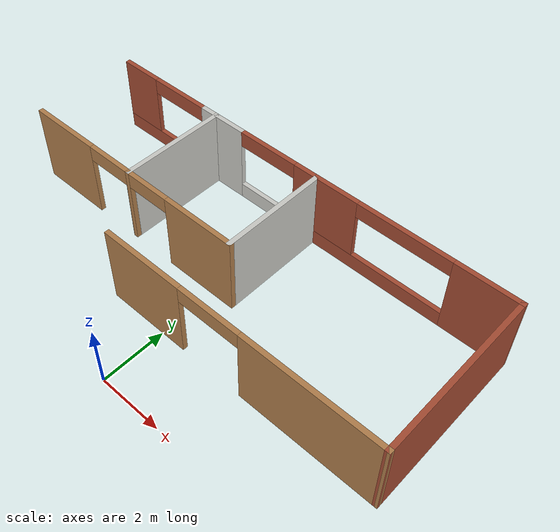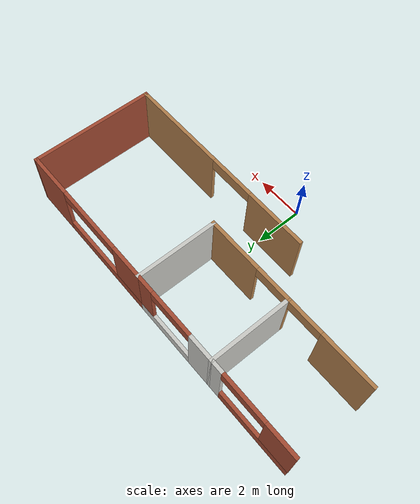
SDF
<sdf version="1.6">
 <model name="mybuilding_0">
  <link name="Wall_112">
   <pose>2.60469 2.0956 0 0 -0 3.14159</pose>
   <visual name="Wall_112_Visual_0">
    <pose>-2.34058 0 1.25 0 -0 0</pose>
    <geometry><box><size>4.31883 0.15 2.5</size></box></geometry>
    <material>
     <script><uri>file://media/materials/scripts/gazebo.material</uri><name>Gazebo/Wood</name></script>
     <ambient>1 1 0.498039 1</ambient>
     <diffuse>1 1 1 1</diffuse>
     <specular>0.2 0.2 0.2 1</specular>
     <emissive>0 0 0 1</emissive>
    </material>
   </visual>
   <visual name="Wall_112_Visual_1">
    <pose>3.15942 0 1.25 0 -0 0</pose>
    <geometry><box><size>2.68117 0.15 2.5</size></box></geometry>
    <material>
     <script><uri>file://media/materials/scripts/gazebo.material</uri><name>Gazebo/Wood</name></script>
     <ambient>1 1 0.498039 1</ambient>
     <diffuse>1 1 1 1</diffuse>
     <specular>0.2 0.2 0.2 1</specular>
     <emissive>0 0 0 1</emissive>
    </material>
   </visual>
   <visual name="Wall_112_Visual_2">
    <pose>0.81883 0 2.25 0 -0 0</pose>
    <geometry><box><size>2 0.15 0.5</size></box></geometry>
    <material>
     <script><uri>file://media/materials/scripts/gazebo.material</uri><name>Gazebo/Wood</name></script>
     <ambient>1 1 0.498039 1</ambient>
     <diffuse>1 1 1 1</diffuse>
     <specular>0.2 0.2 0.2 1</specular>
     <emissive>0 0 0 1</emissive>
    </material>
   </visual>
   <collision name="Wall_112_Collision_0">
    <pose>-2.34058 0 1.25 0 -0 0</pose>
    <geometry><box><size>4.31883 0.15 2.5</size></box></geometry>
    <surface>
     <friction>
      <ode><mu>1</mu><mu2>1</mu2><fdir1>0 0 0</fdir1><slip1>0</slip1><slip2>0</slip2></ode>
      <torsional>
       <coefficient>1</coefficient>
       <patch_radius>0</patch_radius>
       <surface_radius>0</surface_radius>
       <use_patch_radius>1</use_patch_radius>
       <ode><slip>0</slip></ode>
      </torsional>
     </friction>
     <bounce><restitution_coefficient>0</restitution_coefficient><threshold>1e+06</threshold></bounce>
     <contact>
      <collide_without_contact>0</collide_without_contact>
      <collide_without_contact_bitmask>1</collide_without_contact_bitmask>
      <collide_bitmask>1</collide_bitmask>
      <ode>
       <soft_cfm>0</soft_cfm>
       <soft_erp>0.2</soft_erp>
       <kp>1e+13</kp>
       <kd>1</kd>
       <max_vel>0.01</max_vel>
       <min_depth>0</min_depth>
      </ode>
      <bullet>
       <split_impulse>1</split_impulse>
       <split_impulse_penetration_threshold>-0.01</split_impulse_penetration_threshold>
       <soft_cfm>0</soft_cfm>
       <soft_erp>0.2</soft_erp>
       <kp>1e+13</kp>
       <kd>1</kd>
      </bullet>
     </contact>
    </surface>
   </collision>
   <collision name="Wall_112_Collision_1">
    <pose>3.15942 0 1.25 0 -0 0</pose>
    <geometry><box><size>2.68117 0.15 2.5</size></box></geometry>
    <surface>
     <friction>
      <ode><mu>1</mu><mu2>1</mu2><fdir1>0 0 0</fdir1><slip1>0</slip1><slip2>0</slip2></ode>
      <torsional>
       <coefficient>1</coefficient>
       <patch_radius>0</patch_radius>
       <surface_radius>0</surface_radius>
       <use_patch_radius>1</use_patch_radius>
       <ode><slip>0</slip></ode>
      </torsional>
     </friction>
     <bounce><restitution_coefficient>0</restitution_coefficient><threshold>1e+06</threshold></bounce>
     <contact>
      <collide_without_contact>0</collide_without_contact>
      <collide_without_contact_bitmask>1</collide_without_contact_bitmask>
      <collide_bitmask>1</collide_bitmask>
      <ode>
       <soft_cfm>0</soft_cfm>
       <soft_erp>0.2</soft_erp>
       <kp>1e+13</kp>
       <kd>1</kd>
       <max_vel>0.01</max_vel>
       <min_depth>0</min_depth>
      </ode>
      <bullet>
       <split_impulse>1</split_impulse>
       <split_impulse_penetration_threshold>-0.01</split_impulse_penetration_threshold>
       <soft_cfm>0</soft_cfm>
       <soft_erp>0.2</soft_erp>
       <kp>1e+13</kp>
       <kd>1</kd>
      </bullet>
     </contact>
    </surface>
   </collision>
   <collision name="Wall_112_Collision_2">
    <pose>0.81883 0 2.25 0 -0 0</pose>
    <geometry><box><size>2 0.15 0.5</size></box></geometry>
    <surface>
     <friction>
      <ode><mu>1</mu><mu2>1</mu2><fdir1>0 0 0</fdir1><slip1>0</slip1><slip2>0</slip2></ode>
      <torsional>
       <coefficient>1</coefficient>
       <patch_radius>0</patch_radius>
       <surface_radius>0</surface_radius>
       <use_patch_radius>1</use_patch_radius>
       <ode><slip>0</slip></ode>
      </torsional>
     </friction>
     <bounce><restitution_coefficient>0</restitution_coefficient><threshold>1e+06</threshold></bounce>
     <contact>
      <collide_without_contact>0</collide_without_contact>
      <collide_without_contact_bitmask>1</collide_without_contact_bitmask>
      <collide_bitmask>1</collide_bitmask>
      <ode>
       <soft_cfm>0</soft_cfm>
       <soft_erp>0.2</soft_erp>
       <kp>1e+13</kp>
       <kd>1</kd>
       <max_vel>0.01</max_vel>
       <min_depth>0</min_depth>
      </ode>
      <bullet>
       <split_impulse>1</split_impulse>
       <split_impulse_penetration_threshold>-0.01</split_impulse_penetration_threshold>
       <soft_cfm>0</soft_cfm>
       <soft_erp>0.2</soft_erp>
       <kp>1e+13</kp>
       <kd>1</kd>
      </bullet>
     </contact>
    </surface>
   </collision>
  </link>
  <link name="Wall_114">
   <pose>7.02493 4.68743 0 0 -0 1.57263</pose>
   <visual name="Wall_114_Visual">
    <pose>0 0 1.25 0 -0 0</pose>
    <geometry><box><size>5.33367 0.15 2.5</size></box></geometry>
    <material>
     <script><uri>file://media/materials/scripts/gazebo.material</uri><name>Gazebo/Bricks</name></script>
     <ambient>1 1 1 1</ambient>
     <diffuse>1 1 1 1</diffuse>
     <specular>0.2 0.2 0.2 1</specular>
     <emissive>0 0 0 1</emissive>
    </material>
   </visual>
   <collision name="Wall_114_Collision">
    <pose>0 0 1.25 0 -0 0</pose>
    <geometry><box><size>5.33367 0.15 2.5</size></box></geometry>
    <surface>
     <friction>
      <ode><mu>1</mu><mu2>1</mu2><fdir1>0 0 0</fdir1><slip1>0</slip1><slip2>0</slip2></ode>
      <torsional>
       <coefficient>1</coefficient>
       <patch_radius>0</patch_radius>
       <surface_radius>0</surface_radius>
       <use_patch_radius>1</use_patch_radius>
       <ode><slip>0</slip></ode>
      </torsional>
     </friction>
     <bounce><restitution_coefficient>0</restitution_coefficient><threshold>1e+06</threshold></bounce>
     <contact>
      <collide_without_contact>0</collide_without_contact>
      <collide_without_contact_bitmask>1</collide_without_contact_bitmask>
      <collide_bitmask>1</collide_bitmask>
      <ode>
       <soft_cfm>0</soft_cfm>
       <soft_erp>0.2</soft_erp>
       <kp>1e+13</kp>
       <kd>1</kd>
       <max_vel>0.01</max_vel>
       <min_depth>0</min_depth>
      </ode>
      <bullet>
       <split_impulse>1</split_impulse>
       <split_impulse_penetration_threshold>-0.01</split_impulse_penetration_threshold>
       <soft_cfm>0</soft_cfm>
       <soft_erp>0.2</soft_erp>
       <kp>1e+13</kp>
       <kd>1</kd>
      </bullet>
     </contact>
    </surface>
   </collision>
  </link>
  <link name="Wall_119">
   <pose>3.84517 7.27926 0 0 -0 3.14159</pose>
   <visual name="Wall_119_Visual_0">
    <pose>-2.25429 0 1.25 0 -0 0</pose>
    <geometry><box><size>1.99143 0.15 2.5</size></box></geometry>
    <material>
     <script><uri>file://media/materials/scripts/gazebo.material</uri><name>Gazebo/Bricks</name></script>
     <ambient>1 1 1 1</ambient>
     <diffuse>1 1 1 1</diffuse>
     <specular>0.2 0.2 0.2 1</specular>
     <emissive>0 0 0 1</emissive>
    </material>
   </visual>
   <visual name="Wall_119_Visual_1">
    <pose>0.995713 0 0.25 0 -0 0</pose>
    <geometry><box><size>4.50857 0.15 0.5</size></box></geometry>
    <material>
     <script><uri>file://media/materials/scripts/gazebo.material</uri><name>Gazebo/Bricks</name></script>
     <ambient>1 1 1 1</ambient>
     <diffuse>1 1 1 1</diffuse>
     <specular>0.2 0.2 0.2 1</specular>
     <emissive>0 0 0 1</emissive>
    </material>
   </visual>
   <visual name="Wall_119_Visual_2">
    <pose>2.49571 0 1.5 0 -0 0</pose>
    <geometry><box><size>1.50857 0.15 2</size></box></geometry>
    <material>
     <script><uri>file://media/materials/scripts/gazebo.material</uri><name>Gazebo/Bricks</name></script>
     <ambient>1 1 1 1</ambient>
     <diffuse>1 1 1 1</diffuse>
     <specular>0.2 0.2 0.2 1</specular>
     <emissive>0 0 0 1</emissive>
    </material>
   </visual>
   <visual name="Wall_119_Visual_3">
    <pose>0.241426 0 2.25 0 -0 0</pose>
    <geometry><box><size>3 0.15 0.5</size></box></geometry>
    <material>
     <script><uri>file://media/materials/scripts/gazebo.material</uri><name>Gazebo/Bricks</name></script>
     <ambient>1 1 1 1</ambient>
     <diffuse>1 1 1 1</diffuse>
     <specular>0.2 0.2 0.2 1</specular>
     <emissive>0 0 0 1</emissive>
    </material>
   </visual>
   <collision name="Wall_119_Collision_0">
    <pose>-2.25429 0 1.25 0 -0 0</pose>
    <geometry><box><size>1.99143 0.15 2.5</size></box></geometry>
    <surface>
     <friction>
      <ode><mu>1</mu><mu2>1</mu2><fdir1>0 0 0</fdir1><slip1>0</slip1><slip2>0</slip2></ode>
      <torsional>
       <coefficient>1</coefficient>
       <patch_radius>0</patch_radius>
       <surface_radius>0</surface_radius>
       <use_patch_radius>1</use_patch_radius>
       <ode><slip>0</slip></ode>
      </torsional>
     </friction>
     <bounce><restitution_coefficient>0</restitution_coefficient><threshold>1e+06</threshold></bounce>
     <contact>
      <collide_without_contact>0</collide_without_contact>
      <collide_without_contact_bitmask>1</collide_without_contact_bitmask>
      <collide_bitmask>1</collide_bitmask>
      <ode>
       <soft_cfm>0</soft_cfm>
       <soft_erp>0.2</soft_erp>
       <kp>1e+13</kp>
       <kd>1</kd>
       <max_vel>0.01</max_vel>
       <min_depth>0</min_depth>
      </ode>
      <bullet>
       <split_impulse>1</split_impulse>
       <split_impulse_penetration_threshold>-0.01</split_impulse_penetration_threshold>
       <soft_cfm>0</soft_cfm>
       <soft_erp>0.2</soft_erp>
       <kp>1e+13</kp>
       <kd>1</kd>
      </bullet>
     </contact>
    </surface>
   </collision>
   <collision name="Wall_119_Collision_1">
    <pose>0.995713 0 0.25 0 -0 0</pose>
    <geometry><box><size>4.50857 0.15 0.5</size></box></geometry>
    <surface>
     <friction>
      <ode><mu>1</mu><mu2>1</mu2><fdir1>0 0 0</fdir1><slip1>0</slip1><slip2>0</slip2></ode>
      <torsional>
       <coefficient>1</coefficient>
       <patch_radius>0</patch_radius>
       <surface_radius>0</surface_radius>
       <use_patch_radius>1</use_patch_radius>
       <ode><slip>0</slip></ode>
      </torsional>
     </friction>
     <bounce><restitution_coefficient>0</restitution_coefficient><threshold>1e+06</threshold></bounce>
     <contact>
      <collide_without_contact>0</collide_without_contact>
      <collide_without_contact_bitmask>1</collide_without_contact_bitmask>
      <collide_bitmask>1</collide_bitmask>
      <ode>
       <soft_cfm>0</soft_cfm>
       <soft_erp>0.2</soft_erp>
       <kp>1e+13</kp>
       <kd>1</kd>
       <max_vel>0.01</max_vel>
       <min_depth>0</min_depth>
      </ode>
      <bullet>
       <split_impulse>1</split_impulse>
       <split_impulse_penetration_threshold>-0.01</split_impulse_penetration_threshold>
       <soft_cfm>0</soft_cfm>
       <soft_erp>0.2</soft_erp>
       <kp>1e+13</kp>
       <kd>1</kd>
      </bullet>
     </contact>
    </surface>
   </collision>
   <collision name="Wall_119_Collision_2">
    <pose>2.49571 0 1.5 0 -0 0</pose>
    <geometry><box><size>1.50857 0.15 2</size></box></geometry>
    <surface>
     <friction>
      <ode><mu>1</mu><mu2>1</mu2><fdir1>0 0 0</fdir1><slip1>0</slip1><slip2>0</slip2></ode>
      <torsional>
       <coefficient>1</coefficient>
       <patch_radius>0</patch_radius>
       <surface_radius>0</surface_radius>
       <use_patch_radius>1</use_patch_radius>
       <ode><slip>0</slip></ode>
      </torsional>
     </friction>
     <bounce><restitution_coefficient>0</restitution_coefficient><threshold>1e+06</threshold></bounce>
     <contact>
      <collide_without_contact>0</collide_without_contact>
      <collide_without_contact_bitmask>1</collide_without_contact_bitmask>
      <collide_bitmask>1</collide_bitmask>
      <ode>
       <soft_cfm>0</soft_cfm>
       <soft_erp>0.2</soft_erp>
       <kp>1e+13</kp>
       <kd>1</kd>
       <max_vel>0.01</max_vel>
       <min_depth>0</min_depth>
      </ode>
      <bullet>
       <split_impulse>1</split_impulse>
       <split_impulse_penetration_threshold>-0.01</split_impulse_penetration_threshold>
       <soft_cfm>0</soft_cfm>
       <soft_erp>0.2</soft_erp>
       <kp>1e+13</kp>
       <kd>1</kd>
      </bullet>
     </contact>
    </surface>
   </collision>
   <collision name="Wall_119_Collision_3">
    <pose>0.241426 0 2.25 0 -0 0</pose>
    <geometry><box><size>3 0.15 0.5</size></box></geometry>
    <surface>
     <friction>
      <ode><mu>1</mu><mu2>1</mu2><fdir1>0 0 0</fdir1><slip1>0</slip1><slip2>0</slip2></ode>
      <torsional>
       <coefficient>1</coefficient>
       <patch_radius>0</patch_radius>
       <surface_radius>0</surface_radius>
       <use_patch_radius>1</use_patch_radius>
       <ode><slip>0</slip></ode>
      </torsional>
     </friction>
     <bounce><restitution_coefficient>0</restitution_coefficient><threshold>1e+06</threshold></bounce>
     <contact>
      <collide_without_contact>0</collide_without_contact>
      <collide_without_contact_bitmask>1</collide_without_contact_bitmask>
      <collide_bitmask>1</collide_bitmask>
      <ode>
       <soft_cfm>0</soft_cfm>
       <soft_erp>0.2</soft_erp>
       <kp>1e+13</kp>
       <kd>1</kd>
       <max_vel>0.01</max_vel>
       <min_depth>0</min_depth>
      </ode>
      <bullet>
       <split_impulse>1</split_impulse>
       <split_impulse_penetration_threshold>-0.01</split_impulse_penetration_threshold>
       <soft_cfm>0</soft_cfm>
       <soft_erp>0.2</soft_erp>
       <kp>1e+13</kp>
       <kd>1</kd>
      </bullet>
     </contact>
    </surface>
   </collision>
  </link>
  <link name="Wall_121">
   <pose>0.670175 5.60426 0 0 0 -1.5708</pose>
   <visual name="Wall_121_Visual">
    <pose>0 0 1.25 0 -0 0</pose>
    <geometry><box><size>3.5 0.15 2.5</size></box></geometry>
    <material>
     <script><uri>file://media/materials/scripts/gazebo.material</uri><name>Gazebo/CeilingTiled</name></script>
     <ambient>0.333333 0.333333 0.498039 1</ambient>
     <diffuse>1 1 1 1</diffuse>
     <specular>0 0 0 1</specular>
     <emissive>0 0 0 1</emissive>
    </material>
   </visual>
   <collision name="Wall_121_Collision">
    <pose>0 0 1.25 0 -0 0</pose>
    <geometry><box><size>3.5 0.15 2.5</size></box></geometry>
    <surface>
     <friction>
      <ode><mu>1</mu><mu2>1</mu2><fdir1>0 0 0</fdir1><slip1>0</slip1><slip2>0</slip2></ode>
      <torsional>
       <coefficient>1</coefficient>
       <patch_radius>0</patch_radius>
       <surface_radius>0</surface_radius>
       <use_patch_radius>1</use_patch_radius>
       <ode><slip>0</slip></ode>
      </torsional>
     </friction>
     <bounce><restitution_coefficient>0</restitution_coefficient><threshold>1e+06</threshold></bounce>
     <contact>
      <collide_without_contact>0</collide_without_contact>
      <collide_without_contact_bitmask>1</collide_without_contact_bitmask>
      <collide_bitmask>1</collide_bitmask>
      <ode>
       <soft_cfm>0</soft_cfm>
       <soft_erp>0.2</soft_erp>
       <kp>1e+13</kp>
       <kd>1</kd>
       <max_vel>0.01</max_vel>
       <min_depth>0</min_depth>
      </ode>
      <bullet>
       <split_impulse>1</split_impulse>
       <split_impulse_penetration_threshold>-0.01</split_impulse_penetration_threshold>
       <soft_cfm>0</soft_cfm>
       <soft_erp>0.2</soft_erp>
       <kp>1e+13</kp>
       <kd>1</kd>
      </bullet>
     </contact>
    </surface>
   </collision>
  </link>
  <link name="Wall_123">
   <pose>-1.25483 3.92926 0 0 -0 3.14159</pose>
   <inertial>
    <mass>1</mass>
    <inertia><ixx>1</ixx><ixy>0</ixy><ixz>0</ixz><iyy>1</iyy><iyz>0</iyz><izz>1</izz></inertia>
   </inertial>
   <visual name="Wall_123_Visual_1">
    <pose>1.95688 0 1.25 0 -0 0</pose>
    <geometry><box><size>0.086235 0.15 2.5</size></box></geometry>
    <material>
     <script><uri>file://media/materials/scripts/gazebo.material</uri><name>Gazebo/Wood</name></script>
     <ambient>1 1 1 1</ambient>
     <diffuse>1 1 1 1</diffuse>
     <specular>0.2 0.2 0.2 1</specular>
     <emissive>0 0 0 1</emissive>
     <shader type="vertex"><normal_map>__default__</normal_map></shader>
    </material>
   </visual>
   <visual name="Wall_123_Visual_0">
    <pose>-0.793117 0 1.25 0 -0 0</pose>
    <geometry><box><size>2.41377 0.15 2.5</size></box></geometry>
    <material>
     <script><uri>file://media/materials/scripts/gazebo.material</uri><name>Gazebo/Wood</name></script>
     <ambient>1 1 1 1</ambient>
     <diffuse>1 1 1 1</diffuse>
     <specular>0.2 0.2 0.2 1</specular>
     <emissive>0 0 0 1</emissive>
     <shader type="vertex"><normal_map>__default__</normal_map></shader>
    </material>
   </visual>
   <visual name="Wall_123_Visual_2">
    <pose>1.16376 0 2.25 0 -0 0</pose>
    <geometry><box><size>1.5 0.15 0.5</size></box></geometry>
    <material>
     <script><uri>file://media/materials/scripts/gazebo.material</uri><name>Gazebo/Wood</name></script>
     <ambient>1 1 1 1</ambient>
     <diffuse>1 1 1 1</diffuse>
     <specular>0.2 0.2 0.2 1</specular>
     <emissive>0 0 0 1</emissive>
     <shader type="vertex"><normal_map>__default__</normal_map></shader>
    </material>
   </visual>
   <collision name="Wall_123_Collision_0">
    <pose>-0.793117 0 1.25 0 -0 0</pose>
    <geometry><box><size>2.41377 0.15 2.5</size></box></geometry>
    <surface>
     <friction>
      <ode><mu>1</mu><mu2>1</mu2><fdir1>0 0 0</fdir1><slip1>0</slip1><slip2>0</slip2></ode>
      <torsional>
       <coefficient>1</coefficient>
       <patch_radius>0</patch_radius>
       <surface_radius>0</surface_radius>
       <use_patch_radius>1</use_patch_radius>
       <ode><slip>0</slip></ode>
      </torsional>
     </friction>
     <bounce><restitution_coefficient>0</restitution_coefficient><threshold>1e+06</threshold></bounce>
     <contact>
      <collide_without_contact>0</collide_without_contact>
      <collide_without_contact_bitmask>1</collide_without_contact_bitmask>
      <collide_bitmask>1</collide_bitmask>
      <ode>
       <soft_cfm>0</soft_cfm>
       <soft_erp>0.2</soft_erp>
       <kp>1e+13</kp>
       <kd>1</kd>
       <max_vel>0.01</max_vel>
       <min_depth>0</min_depth>
      </ode>
      <bullet>
       <split_impulse>1</split_impulse>
       <split_impulse_penetration_threshold>-0.01</split_impulse_penetration_threshold>
       <soft_cfm>0</soft_cfm>
       <soft_erp>0.2</soft_erp>
       <kp>1e+13</kp>
       <kd>1</kd>
      </bullet>
     </contact>
    </surface>
   </collision>
   <collision name="Wall_123_Collision_1">
    <pose>1.95688 0 1.25 0 -0 0</pose>
    <geometry><box><size>0.086235 0.15 2.5</size></box></geometry>
    <surface>
     <friction>
      <ode><mu>1</mu><mu2>1</mu2><fdir1>0 0 0</fdir1><slip1>0</slip1><slip2>0</slip2></ode>
      <torsional>
       <coefficient>1</coefficient>
       <patch_radius>0</patch_radius>
       <surface_radius>0</surface_radius>
       <use_patch_radius>1</use_patch_radius>
       <ode><slip>0</slip></ode>
      </torsional>
     </friction>
     <bounce><restitution_coefficient>0</restitution_coefficient><threshold>1e+06</threshold></bounce>
     <contact>
      <collide_without_contact>0</collide_without_contact>
      <collide_without_contact_bitmask>1</collide_without_contact_bitmask>
      <collide_bitmask>1</collide_bitmask>
      <ode>
       <soft_cfm>0</soft_cfm>
       <soft_erp>0.2</soft_erp>
       <kp>1e+13</kp>
       <kd>1</kd>
       <max_vel>0.01</max_vel>
       <min_depth>0</min_depth>
      </ode>
      <bullet>
       <split_impulse>1</split_impulse>
       <split_impulse_penetration_threshold>-0.01</split_impulse_penetration_threshold>
       <soft_cfm>0</soft_cfm>
       <soft_erp>0.2</soft_erp>
       <kp>1e+13</kp>
       <kd>1</kd>
      </bullet>
     </contact>
    </surface>
   </collision>
   <collision name="Wall_123_Collision_2">
    <pose>1.16376 0 2.25 0 -0 0</pose>
    <geometry><box><size>1.5 0.15 0.5</size></box></geometry>
    <surface>
     <friction>
      <ode><mu>1</mu><mu2>1</mu2><fdir1>0 0 0</fdir1><slip1>0</slip1><slip2>0</slip2></ode>
      <torsional>
       <coefficient>1</coefficient>
       <patch_radius>0</patch_radius>
       <surface_radius>0</surface_radius>
       <use_patch_radius>1</use_patch_radius>
       <ode><slip>0</slip></ode>
      </torsional>
     </friction>
     <bounce><restitution_coefficient>0</restitution_coefficient><threshold>1e+06</threshold></bounce>
     <contact>
      <collide_without_contact>0</collide_without_contact>
      <collide_without_contact_bitmask>1</collide_without_contact_bitmask>
      <collide_bitmask>1</collide_bitmask>
      <ode>
       <soft_cfm>0</soft_cfm>
       <soft_erp>0.2</soft_erp>
       <kp>1e+13</kp>
       <kd>1</kd>
       <max_vel>0.01</max_vel>
       <min_depth>0</min_depth>
      </ode>
      <bullet>
       <split_impulse>1</split_impulse>
       <split_impulse_penetration_threshold>-0.01</split_impulse_penetration_threshold>
       <soft_cfm>0</soft_cfm>
       <soft_erp>0.2</soft_erp>
       <kp>1e+13</kp>
       <kd>1</kd>
      </bullet>
     </contact>
    </surface>
   </collision>
  </link>
  <link name="Wall_124">
   <pose>-3.17983 5.60426 0 0 -0 1.5708</pose>
   <visual name="Wall_124_Visual">
    <pose>0 0 1.25 0 -0 0</pose>
    <geometry><box><size>3.5 0.15 2.5</size></box></geometry>
    <material>
     <script><uri>file://media/materials/scripts/gazebo.material</uri><name>Gazebo/CeilingTiled</name></script>
     <ambient>0.333333 0.333333 0.498039 1</ambient>
     <diffuse>1 1 1 1</diffuse>
     <specular>0 0 0 1</specular>
     <emissive>0 0 0 1</emissive>
    </material>
   </visual>
   <collision name="Wall_124_Collision">
    <pose>0 0 1.25 0 -0 0</pose>
    <geometry><box><size>3.5 0.15 2.5</size></box></geometry>
    <surface>
     <friction>
      <ode><mu>1</mu><mu2>1</mu2><fdir1>0 0 0</fdir1><slip1>0</slip1><slip2>0</slip2></ode>
      <torsional>
       <coefficient>1</coefficient>
       <patch_radius>0</patch_radius>
       <surface_radius>0</surface_radius>
       <use_patch_radius>1</use_patch_radius>
       <ode><slip>0</slip></ode>
      </torsional>
     </friction>
     <bounce><restitution_coefficient>0</restitution_coefficient><threshold>1e+06</threshold></bounce>
     <contact>
      <collide_without_contact>0</collide_without_contact>
      <collide_without_contact_bitmask>1</collide_without_contact_bitmask>
      <collide_bitmask>1</collide_bitmask>
      <ode>
       <soft_cfm>0</soft_cfm>
       <soft_erp>0.2</soft_erp>
       <kp>1e+13</kp>
       <kd>1</kd>
       <max_vel>0.01</max_vel>
       <min_depth>0</min_depth>
      </ode>
      <bullet>
       <split_impulse>1</split_impulse>
       <split_impulse_penetration_threshold>-0.01</split_impulse_penetration_threshold>
       <soft_cfm>0</soft_cfm>
       <soft_erp>0.2</soft_erp>
       <kp>1e+13</kp>
       <kd>1</kd>
      </bullet>
     </contact>
    </surface>
   </collision>
  </link>
  <link name="Wall_125">
   <pose>-1.25483 7.27926 0 0 -0 0</pose>
   <inertial>
    <mass>1</mass>
    <inertia><ixx>1</ixx><ixy>0</ixy><ixz>0</ixz><iyy>1</iyy><iyz>0</iyz><izz>1</izz></inertia>
   </inertial>
   <visual name="Wall_125_Visual_0">
    <pose>-1.41847 0 1.25 0 -0 0</pose>
    <geometry><box><size>1.16306 0.15 2.5</size></box></geometry>
    <material>
     <script><uri>file://media/materials/scripts/gazebo.material</uri><name>Gazebo/CeilingTiled</name></script>
     <ambient>1 1 1 1</ambient>
     <diffuse>1 1 1 1</diffuse>
     <specular>0.2 0.2 0.2 1</specular>
     <emissive>0 0 0 1</emissive>
     <shader type="vertex"><normal_map>__default__</normal_map></shader>
    </material>
   </visual>
   <visual name="Wall_125_Visual_1">
    <pose>0.581531 0 0.25 0 -0 0</pose>
    <geometry><box><size>2.83694 0.15 0.5</size></box></geometry>
    <material>
     <script><uri>file://media/materials/scripts/gazebo.material</uri><name>Gazebo/CeilingTiled</name></script>
     <ambient>1 1 1 1</ambient>
     <diffuse>1 1 1 1</diffuse>
     <specular>0.2 0.2 0.2 1</specular>
     <emissive>0 0 0 1</emissive>
     <shader type="vertex"><normal_map>__default__</normal_map></shader>
    </material>
   </visual>
   <visual name="Wall_125_Visual_3">
    <pose>0.163061 0 2.25 0 -0 0</pose>
    <geometry><box><size>2 0.15 0.5</size></box></geometry>
    <material>
     <script><uri>file://media/materials/scripts/gazebo.material</uri><name>Gazebo/Bricks</name></script>
     <ambient>1 1 1 1</ambient>
     <diffuse>1 1 1 1</diffuse>
     <specular>0.2 0.2 0.2 1</specular>
     <emissive>0 0 0 1</emissive>
     <shader type="vertex"><normal_map>__default__</normal_map></shader>
    </material>
   </visual>
   <visual name="Wall_125_Visual_2">
    <pose>1.58153 0 1.5 0 -0 0</pose>
    <geometry><box><size>0.836939 0.15 2</size></box></geometry>
    <material>
     <script><uri>file://media/materials/scripts/gazebo.material</uri><name>Gazebo/Bricks</name></script>
     <ambient>1 1 1 1</ambient>
     <diffuse>1 1 1 1</diffuse>
     <specular>0.2 0.2 0.2 1</specular>
     <emissive>0 0 0 1</emissive>
     <shader type="vertex"><normal_map>__default__</normal_map></shader>
    </material>
   </visual>
   <collision name="Wall_125_Collision_2">
    <pose>1.58153 0 1.5 0 -0 0</pose>
    <geometry><box><size>0.836939 0.15 2</size></box></geometry>
    <surface>
     <friction>
      <ode><mu>1</mu><mu2>1</mu2><fdir1>0 0 0</fdir1><slip1>0</slip1><slip2>0</slip2></ode>
      <torsional>
       <coefficient>1</coefficient>
       <patch_radius>0</patch_radius>
       <surface_radius>0</surface_radius>
       <use_patch_radius>1</use_patch_radius>
       <ode><slip>0</slip></ode>
      </torsional>
     </friction>
     <bounce><restitution_coefficient>0</restitution_coefficient><threshold>1e+06</threshold></bounce>
     <contact>
      <collide_without_contact>0</collide_without_contact>
      <collide_without_contact_bitmask>1</collide_without_contact_bitmask>
      <collide_bitmask>1</collide_bitmask>
      <ode>
       <soft_cfm>0</soft_cfm>
       <soft_erp>0.2</soft_erp>
       <kp>1e+13</kp>
       <kd>1</kd>
       <max_vel>0.01</max_vel>
       <min_depth>0</min_depth>
      </ode>
      <bullet>
       <split_impulse>1</split_impulse>
       <split_impulse_penetration_threshold>-0.01</split_impulse_penetration_threshold>
       <soft_cfm>0</soft_cfm>
       <soft_erp>0.2</soft_erp>
       <kp>1e+13</kp>
       <kd>1</kd>
      </bullet>
     </contact>
    </surface>
   </collision>
   <collision name="Wall_125_Collision_0">
    <pose>-1.41847 0 1.25 0 -0 0</pose>
    <geometry><box><size>1.16306 0.15 2.5</size></box></geometry>
    <surface>
     <friction>
      <ode><mu>1</mu><mu2>1</mu2><fdir1>0 0 0</fdir1><slip1>0</slip1><slip2>0</slip2></ode>
      <torsional>
       <coefficient>1</coefficient>
       <patch_radius>0</patch_radius>
       <surface_radius>0</surface_radius>
       <use_patch_radius>1</use_patch_radius>
       <ode><slip>0</slip></ode>
      </torsional>
     </friction>
     <bounce><restitution_coefficient>0</restitution_coefficient><threshold>1e+06</threshold></bounce>
     <contact>
      <collide_without_contact>0</collide_without_contact>
      <collide_without_contact_bitmask>1</collide_without_contact_bitmask>
      <collide_bitmask>1</collide_bitmask>
      <ode>
       <soft_cfm>0</soft_cfm>
       <soft_erp>0.2</soft_erp>
       <kp>1e+13</kp>
       <kd>1</kd>
       <max_vel>0.01</max_vel>
       <min_depth>0</min_depth>
      </ode>
      <bullet>
       <split_impulse>1</split_impulse>
       <split_impulse_penetration_threshold>-0.01</split_impulse_penetration_threshold>
       <soft_cfm>0</soft_cfm>
       <soft_erp>0.2</soft_erp>
       <kp>1e+13</kp>
       <kd>1</kd>
      </bullet>
     </contact>
    </surface>
   </collision>
   <collision name="Wall_125_Collision_1">
    <pose>0.581531 0 0.25 0 -0 0</pose>
    <geometry><box><size>2.83694 0.15 0.5</size></box></geometry>
    <surface>
     <friction>
      <ode><mu>1</mu><mu2>1</mu2><fdir1>0 0 0</fdir1><slip1>0</slip1><slip2>0</slip2></ode>
      <torsional>
       <coefficient>1</coefficient>
       <patch_radius>0</patch_radius>
       <surface_radius>0</surface_radius>
       <use_patch_radius>1</use_patch_radius>
       <ode><slip>0</slip></ode>
      </torsional>
     </friction>
     <bounce><restitution_coefficient>0</restitution_coefficient><threshold>1e+06</threshold></bounce>
     <contact>
      <collide_without_contact>0</collide_without_contact>
      <collide_without_contact_bitmask>1</collide_without_contact_bitmask>
      <collide_bitmask>1</collide_bitmask>
      <ode>
       <soft_cfm>0</soft_cfm>
       <soft_erp>0.2</soft_erp>
       <kp>1e+13</kp>
       <kd>1</kd>
       <max_vel>0.01</max_vel>
       <min_depth>0</min_depth>
      </ode>
      <bullet>
       <split_impulse>1</split_impulse>
       <split_impulse_penetration_threshold>-0.01</split_impulse_penetration_threshold>
       <soft_cfm>0</soft_cfm>
       <soft_erp>0.2</soft_erp>
       <kp>1e+13</kp>
       <kd>1</kd>
      </bullet>
     </contact>
    </surface>
   </collision>
   <collision name="Wall_125_Collision_3">
    <pose>0.163061 0 2.25 0 -0 0</pose>
    <geometry><box><size>2 0.15 0.5</size></box></geometry>
    <surface>
     <friction>
      <ode><mu>1</mu><mu2>1</mu2><fdir1>0 0 0</fdir1><slip1>0</slip1><slip2>0</slip2></ode>
      <torsional>
       <coefficient>1</coefficient>
       <patch_radius>0</patch_radius>
       <surface_radius>0</surface_radius>
       <use_patch_radius>1</use_patch_radius>
       <ode><slip>0</slip></ode>
      </torsional>
     </friction>
     <bounce><restitution_coefficient>0</restitution_coefficient><threshold>1e+06</threshold></bounce>
     <contact>
      <collide_without_contact>0</collide_without_contact>
      <collide_without_contact_bitmask>1</collide_without_contact_bitmask>
      <collide_bitmask>1</collide_bitmask>
      <ode>
       <soft_cfm>0</soft_cfm>
       <soft_erp>0.2</soft_erp>
       <kp>1e+13</kp>
       <kd>1</kd>
       <max_vel>0.01</max_vel>
       <min_depth>0</min_depth>
      </ode>
      <bullet>
       <split_impulse>1</split_impulse>
       <split_impulse_penetration_threshold>-0.01</split_impulse_penetration_threshold>
       <soft_cfm>0</soft_cfm>
       <soft_erp>0.2</soft_erp>
       <kp>1e+13</kp>
       <kd>1</kd>
      </bullet>
     </contact>
    </surface>
   </collision>
  </link>
  <link name="Wall_127">
   <pose>-5.10482 7.27926 0 0 -0 3.14159</pose>
   <inertial>
    <mass>1</mass>
    <inertia><ixx>1</ixx><ixy>0</ixy><ixz>0</ixz><iyy>1</iyy><iyz>0</iyz><izz>1</izz></inertia>
   </inertial>
   <visual name="Wall_127_Visual_0">
    <pose>-1.69078 0 1.25 0 -0 0</pose>
    <geometry><box><size>0.618444 0.15 2.5</size></box></geometry>
    <material>
     <script><uri>file://media/materials/scripts/gazebo.material</uri><name>Gazebo/CeilingTiled</name></script>
     <ambient>1 1 1 1</ambient>
     <diffuse>1 1 1 1</diffuse>
     <specular>0.2 0.2 0.2 1</specular>
     <emissive>0 0 0 1</emissive>
     <shader type="vertex"><normal_map>__default__</normal_map></shader>
    </material>
   </visual>
   <visual name="Wall_127_Visual_1">
    <pose>0.309222 0 0.25 0 -0 0</pose>
    <geometry><box><size>3.38156 0.15 0.5</size></box></geometry>
    <material>
     <script><uri>file://media/materials/scripts/gazebo.material</uri><name>Gazebo/Bricks</name></script>
     <ambient>1 1 1 1</ambient>
     <diffuse>1 1 1 1</diffuse>
     <specular>0.2 0.2 0.2 1</specular>
     <emissive>0 0 0 1</emissive>
     <shader type="vertex"><normal_map>__default__</normal_map></shader>
    </material>
   </visual>
   <visual name="Wall_127_Visual_3">
    <pose>-0.381556 0 2.25 0 -0 0</pose>
    <geometry><box><size>2 0.15 0.5</size></box></geometry>
    <material>
     <script><uri>file://media/materials/scripts/gazebo.material</uri><name>Gazebo/Bricks</name></script>
     <ambient>1 1 1 1</ambient>
     <diffuse>1 1 1 1</diffuse>
     <specular>0.2 0.2 0.2 1</specular>
     <emissive>0 0 0 1</emissive>
     <shader type="vertex"><normal_map>__default__</normal_map></shader>
    </material>
   </visual>
   <visual name="Wall_127_Visual_2">
    <pose>1.30922 0 1.5 0 -0 0</pose>
    <geometry><box><size>1.38156 0.15 2</size></box></geometry>
    <material>
     <script><uri>file://media/materials/scripts/gazebo.material</uri><name>Gazebo/Bricks</name></script>
     <ambient>1 1 1 1</ambient>
     <diffuse>1 1 1 1</diffuse>
     <specular>0.2 0.2 0.2 1</specular>
     <emissive>0 0 0 1</emissive>
     <shader type="vertex"><normal_map>__default__</normal_map></shader>
    </material>
   </visual>
   <collision name="Wall_127_Collision_0">
    <pose>-1.69078 0 1.25 0 -0 0</pose>
    <geometry><box><size>0.618444 0.15 2.5</size></box></geometry>
    <surface>
     <friction>
      <ode><mu>1</mu><mu2>1</mu2><fdir1>0 0 0</fdir1><slip1>0</slip1><slip2>0</slip2></ode>
      <torsional>
       <coefficient>1</coefficient>
       <patch_radius>0</patch_radius>
       <surface_radius>0</surface_radius>
       <use_patch_radius>1</use_patch_radius>
       <ode><slip>0</slip></ode>
      </torsional>
     </friction>
     <bounce><restitution_coefficient>0</restitution_coefficient><threshold>1e+06</threshold></bounce>
     <contact>
      <collide_without_contact>0</collide_without_contact>
      <collide_without_contact_bitmask>1</collide_without_contact_bitmask>
      <collide_bitmask>1</collide_bitmask>
      <ode>
       <soft_cfm>0</soft_cfm>
       <soft_erp>0.2</soft_erp>
       <kp>1e+13</kp>
       <kd>1</kd>
       <max_vel>0.01</max_vel>
       <min_depth>0</min_depth>
      </ode>
      <bullet>
       <split_impulse>1</split_impulse>
       <split_impulse_penetration_threshold>-0.01</split_impulse_penetration_threshold>
       <soft_cfm>0</soft_cfm>
       <soft_erp>0.2</soft_erp>
       <kp>1e+13</kp>
       <kd>1</kd>
      </bullet>
     </contact>
    </surface>
   </collision>
   <collision name="Wall_127_Collision_1">
    <pose>0.309222 0 0.25 0 -0 0</pose>
    <geometry><box><size>3.38156 0.15 0.5</size></box></geometry>
    <surface>
     <friction>
      <ode><mu>1</mu><mu2>1</mu2><fdir1>0 0 0</fdir1><slip1>0</slip1><slip2>0</slip2></ode>
      <torsional>
       <coefficient>1</coefficient>
       <patch_radius>0</patch_radius>
       <surface_radius>0</surface_radius>
       <use_patch_radius>1</use_patch_radius>
       <ode><slip>0</slip></ode>
      </torsional>
     </friction>
     <bounce><restitution_coefficient>0</restitution_coefficient><threshold>1e+06</threshold></bounce>
     <contact>
      <collide_without_contact>0</collide_without_contact>
      <collide_without_contact_bitmask>1</collide_without_contact_bitmask>
      <collide_bitmask>1</collide_bitmask>
      <ode>
       <soft_cfm>0</soft_cfm>
       <soft_erp>0.2</soft_erp>
       <kp>1e+13</kp>
       <kd>1</kd>
       <max_vel>0.01</max_vel>
       <min_depth>0</min_depth>
      </ode>
      <bullet>
       <split_impulse>1</split_impulse>
       <split_impulse_penetration_threshold>-0.01</split_impulse_penetration_threshold>
       <soft_cfm>0</soft_cfm>
       <soft_erp>0.2</soft_erp>
       <kp>1e+13</kp>
       <kd>1</kd>
      </bullet>
     </contact>
    </surface>
   </collision>
   <collision name="Wall_127_Collision_2">
    <pose>1.30922 0 1.5 0 -0 0</pose>
    <geometry><box><size>1.38156 0.15 2</size></box></geometry>
    <surface>
     <friction>
      <ode><mu>1</mu><mu2>1</mu2><fdir1>0 0 0</fdir1><slip1>0</slip1><slip2>0</slip2></ode>
      <torsional>
       <coefficient>1</coefficient>
       <patch_radius>0</patch_radius>
       <surface_radius>0</surface_radius>
       <use_patch_radius>1</use_patch_radius>
       <ode><slip>0</slip></ode>
      </torsional>
     </friction>
     <bounce><restitution_coefficient>0</restitution_coefficient><threshold>1e+06</threshold></bounce>
     <contact>
      <collide_without_contact>0</collide_without_contact>
      <collide_without_contact_bitmask>1</collide_without_contact_bitmask>
      <collide_bitmask>1</collide_bitmask>
      <ode>
       <soft_cfm>0</soft_cfm>
       <soft_erp>0.2</soft_erp>
       <kp>1e+13</kp>
       <kd>1</kd>
       <max_vel>0.01</max_vel>
       <min_depth>0</min_depth>
      </ode>
      <bullet>
       <split_impulse>1</split_impulse>
       <split_impulse_penetration_threshold>-0.01</split_impulse_penetration_threshold>
       <soft_cfm>0</soft_cfm>
       <soft_erp>0.2</soft_erp>
       <kp>1e+13</kp>
       <kd>1</kd>
      </bullet>
     </contact>
    </surface>
   </collision>
   <collision name="Wall_127_Collision_3">
    <pose>-0.381556 0 2.25 0 -0 0</pose>
    <geometry><box><size>2 0.15 0.5</size></box></geometry>
    <surface>
     <friction>
      <ode><mu>1</mu><mu2>1</mu2><fdir1>0 0 0</fdir1><slip1>0</slip1><slip2>0</slip2></ode>
      <torsional>
       <coefficient>1</coefficient>
       <patch_radius>0</patch_radius>
       <surface_radius>0</surface_radius>
       <use_patch_radius>1</use_patch_radius>
       <ode><slip>0</slip></ode>
      </torsional>
     </friction>
     <bounce><restitution_coefficient>0</restitution_coefficient><threshold>1e+06</threshold></bounce>
     <contact>
      <collide_without_contact>0</collide_without_contact>
      <collide_without_contact_bitmask>1</collide_without_contact_bitmask>
      <collide_bitmask>1</collide_bitmask>
      <ode>
       <soft_cfm>0</soft_cfm>
       <soft_erp>0.2</soft_erp>
       <kp>1e+13</kp>
       <kd>1</kd>
       <max_vel>0.01</max_vel>
       <min_depth>0</min_depth>
      </ode>
      <bullet>
       <split_impulse>1</split_impulse>
       <split_impulse_penetration_threshold>-0.01</split_impulse_penetration_threshold>
       <soft_cfm>0</soft_cfm>
       <soft_erp>0.2</soft_erp>
       <kp>1e+13</kp>
       <kd>1</kd>
      </bullet>
     </contact>
    </surface>
   </collision>
  </link>
  <link name="Wall_130">
   <pose>-5.10482 3.92926 0 0 -0 3.14159</pose>
   <visual name="Wall_130_Visual_0">
    <pose>-1.93168 0 1.25 0 -0 0</pose>
    <geometry><box><size>0.136646 0.15 2.5</size></box></geometry>
    <material>
     <script><uri>file://media/materials/scripts/gazebo.material</uri><name>Gazebo/Wood</name></script>
     <ambient>1 1 1 1</ambient>
     <diffuse>1 1 1 1</diffuse>
     <specular>0.2 0.2 0.2 1</specular>
     <emissive>0 0 0 1</emissive>
    </material>
   </visual>
   <visual name="Wall_130_Visual_1">
    <pose>0.818323 0 1.25 0 -0 0</pose>
    <geometry><box><size>2.36335 0.15 2.5</size></box></geometry>
    <material>
     <script><uri>file://media/materials/scripts/gazebo.material</uri><name>Gazebo/Wood</name></script>
     <ambient>1 1 1 1</ambient>
     <diffuse>1 1 1 1</diffuse>
     <specular>0.2 0.2 0.2 1</specular>
     <emissive>0 0 0 1</emissive>
    </material>
   </visual>
   <visual name="Wall_130_Visual_2">
    <pose>-1.11335 0 2.25 0 -0 0</pose>
    <geometry><box><size>1.5 0.15 0.5</size></box></geometry>
    <material>
     <script><uri>file://media/materials/scripts/gazebo.material</uri><name>Gazebo/Wood</name></script>
     <ambient>1 1 1 1</ambient>
     <diffuse>1 1 1 1</diffuse>
     <specular>0.2 0.2 0.2 1</specular>
     <emissive>0 0 0 1</emissive>
    </material>
   </visual>
   <collision name="Wall_130_Collision_0">
    <pose>-1.93168 0 1.25 0 -0 0</pose>
    <geometry><box><size>0.136646 0.15 2.5</size></box></geometry>
    <surface>
     <friction>
      <ode><mu>1</mu><mu2>1</mu2><fdir1>0 0 0</fdir1><slip1>0</slip1><slip2>0</slip2></ode>
      <torsional>
       <coefficient>1</coefficient>
       <patch_radius>0</patch_radius>
       <surface_radius>0</surface_radius>
       <use_patch_radius>1</use_patch_radius>
       <ode><slip>0</slip></ode>
      </torsional>
     </friction>
     <bounce><restitution_coefficient>0</restitution_coefficient><threshold>1e+06</threshold></bounce>
     <contact>
      <collide_without_contact>0</collide_without_contact>
      <collide_without_contact_bitmask>1</collide_without_contact_bitmask>
      <collide_bitmask>1</collide_bitmask>
      <ode>
       <soft_cfm>0</soft_cfm>
       <soft_erp>0.2</soft_erp>
       <kp>1e+13</kp>
       <kd>1</kd>
       <max_vel>0.01</max_vel>
       <min_depth>0</min_depth>
      </ode>
      <bullet>
       <split_impulse>1</split_impulse>
       <split_impulse_penetration_threshold>-0.01</split_impulse_penetration_threshold>
       <soft_cfm>0</soft_cfm>
       <soft_erp>0.2</soft_erp>
       <kp>1e+13</kp>
       <kd>1</kd>
      </bullet>
     </contact>
    </surface>
   </collision>
   <collision name="Wall_130_Collision_1">
    <pose>0.818323 0 1.25 0 -0 0</pose>
    <geometry><box><size>2.36335 0.15 2.5</size></box></geometry>
    <surface>
     <friction>
      <ode><mu>1</mu><mu2>1</mu2><fdir1>0 0 0</fdir1><slip1>0</slip1><slip2>0</slip2></ode>
      <torsional>
       <coefficient>1</coefficient>
       <patch_radius>0</patch_radius>
       <surface_radius>0</surface_radius>
       <use_patch_radius>1</use_patch_radius>
       <ode><slip>0</slip></ode>
      </torsional>
     </friction>
     <bounce><restitution_coefficient>0</restitution_coefficient><threshold>1e+06</threshold></bounce>
     <contact>
      <collide_without_contact>0</collide_without_contact>
      <collide_without_contact_bitmask>1</collide_without_contact_bitmask>
      <collide_bitmask>1</collide_bitmask>
      <ode>
       <soft_cfm>0</soft_cfm>
       <soft_erp>0.2</soft_erp>
       <kp>1e+13</kp>
       <kd>1</kd>
       <max_vel>0.01</max_vel>
       <min_depth>0</min_depth>
      </ode>
      <bullet>
       <split_impulse>1</split_impulse>
       <split_impulse_penetration_threshold>-0.01</split_impulse_penetration_threshold>
       <soft_cfm>0</soft_cfm>
       <soft_erp>0.2</soft_erp>
       <kp>1e+13</kp>
       <kd>1</kd>
      </bullet>
     </contact>
    </surface>
   </collision>
   <collision name="Wall_130_Collision_2">
    <pose>-1.11335 0 2.25 0 -0 0</pose>
    <geometry><box><size>1.5 0.15 0.5</size></box></geometry>
    <surface>
     <friction>
      <ode><mu>1</mu><mu2>1</mu2><fdir1>0 0 0</fdir1><slip1>0</slip1><slip2>0</slip2></ode>
      <torsional>
       <coefficient>1</coefficient>
       <patch_radius>0</patch_radius>
       <surface_radius>0</surface_radius>
       <use_patch_radius>1</use_patch_radius>
       <ode><slip>0</slip></ode>
      </torsional>
     </friction>
     <bounce><restitution_coefficient>0</restitution_coefficient><threshold>1e+06</threshold></bounce>
     <contact>
      <collide_without_contact>0</collide_without_contact>
      <collide_without_contact_bitmask>1</collide_without_contact_bitmask>
      <collide_bitmask>1</collide_bitmask>
      <ode>
       <soft_cfm>0</soft_cfm>
       <soft_erp>0.2</soft_erp>
       <kp>1e+13</kp>
       <kd>1</kd>
       <max_vel>0.01</max_vel>
       <min_depth>0</min_depth>
      </ode>
      <bullet>
       <split_impulse>1</split_impulse>
       <split_impulse_penetration_threshold>-0.01</split_impulse_penetration_threshold>
       <soft_cfm>0</soft_cfm>
       <soft_erp>0.2</soft_erp>
       <kp>1e+13</kp>
       <kd>1</kd>
      </bullet>
     </contact>
    </surface>
   </collision>
  </link>
  <static>1</static>
 </model>
</sdf>
